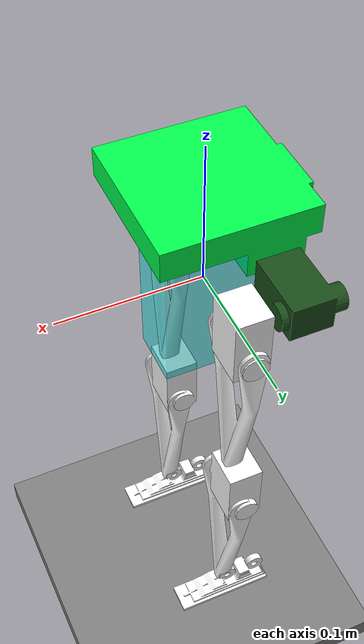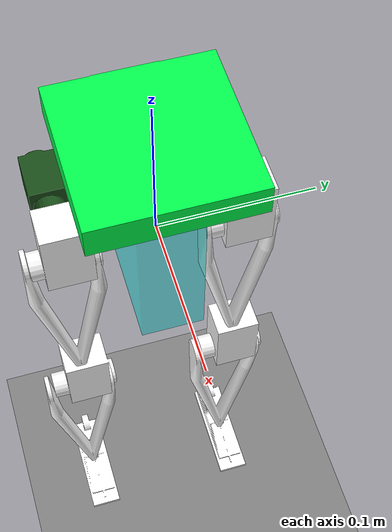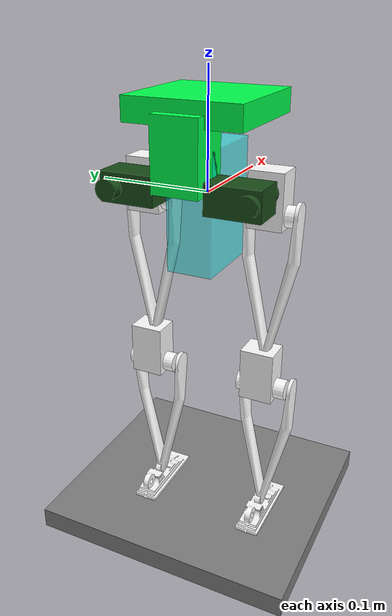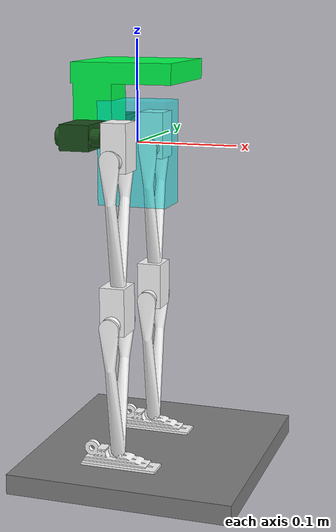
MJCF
<mujoco model="stepMARKIV">

  <asset>
    <mesh name="JETSON" file="../scad/JETSON.stl" scale="0.001 0.001 0.001"/>
    <mesh name="BATT" file="../scad/BATT.stl" scale="0.001 0.001 0.001"/>
    <mesh name="PELVIS" file="../scad/PELVIS.stl" scale="0.001 0.001 0.001"/>
    <mesh name="HIP" file="../scad/HIP.stl" scale="0.001 0.001 0.001"/>
    <mesh name="THIGH" file="../scad/THIGH.stl" scale="0.001 0.001 0.001"/>
    <mesh name="SHIN" file="../scad/SHIN.stl" scale="0.001 0.001 0.001"/>
    <mesh name="SHINLINK" file="../scad/SHINLINK.stl" scale="0.001 0.001 0.001"/>
    <mesh name="FOOT" file="../scad/FOOT.stl" scale="0.001 0.001 0.001"/>
  </asset>

   <default>
      <joint axis="1 0 0" limited="true" range="-10 10" damping="0.1"/>
      <geom size="1 1 .01" type="box"/>

   </default>

   <worldbody>
      <body>
    <geom pos="0 0 0" quat="1 0 0 0" type="mesh" rgba="0 1 1 0.5" mesh="BATT"/>
    <geom pos="0 0 .02" quat="1 0 0 0" type="mesh" rgba="0 1 0.3 1" mesh="JETSON"/>
    <geom pos="0 0 .01" quat="1 0 0 0" type="mesh" rgba=".1 .3 .1 1" mesh="PELVIS"/>
    <geom pos="-0.08 0 .01" quat="0 0 0 1" type="mesh" rgba=".1 .3 .1 1" mesh="PELVIS"/>

            <body>
               <joint pos="-0.05 .058 0.01" name="servo_4" axis="1 0 0" limited="true" damping="0.1"/>
               <geom pos="0 0 0" quat="1 0 0 0" type="mesh" rgba="1 1 1 1" mesh="HIP"/>
               <body pos=".00 0 0">
                  <joint pos="0 .05 -0.01" name="servo_3" axis="0 1 0" limited="true" damping="0.1"/>
                  <geom pos="0 -0 0" quat="1 0 0 0" type="mesh" rgba="1 1 1 1" mesh="THIGH"/>
                  <body pos=".00 0 0">
                     <joint  pos="-0.001 0.05 -0.168" name="servo_2" axis="0 1 0" limited="true" damping="0.1"/>
                     <geom pos="0 -0 0" quat="1 0 0 0" type="mesh" rgba="1 1 1 1" mesh="SHIN"/>
                     <body pos=".00 0 0">
                        <joint  pos="0 0.05 -0.298" name="servo_1" axis="0 1 0" limited="true" damping="0.1"/>
                        <geom pos="0 -0 0" quat="1 0 0 0" type="mesh" rgba="1 1 1 1" mesh="FOOT"/>
                     </body>
                  </body>
               </body>
            </body>

           <body>
               <joint pos="-0.05 -.058 0.01" name="servo_5" axis="1 0 0" limited="true" damping="0.1"/>
               <geom pos="0 -0.11 0" quat="1 0 0 0" type="mesh" rgba="1 1 1 1" mesh="HIP"/>
               <body pos=".00 0 0">
                  <joint pos="0 -.058 -0.01" name="servo_6" axis="0 1 0" limited="true" damping="0.1"/>
                  <geom pos="0 -0.11 0" quat="1 0 0 0" type="mesh" rgba="1 1 1 1" mesh="THIGH"/>
                  <body pos=".00 0 0">
                     <joint  pos="-0.001 -0.058 -0.168" name="servo_7" axis="0 1 0" limited="true" damping="0.1"/>
                     <geom pos="0 -0.11 0" quat="1 0 0 0" type="mesh" rgba="1 1 1 1" mesh="SHIN"/>
                     <body pos=".00 0 0">
                        <joint  pos="0 -0.058 -0.298" name="servo_8" axis="0 1 0" limited="true" damping="0.1"/>
                        <geom pos="0 -0.11 0" quat="1 0 0 0" type="mesh" rgba="1 1 1 1" mesh="FOOT"/>
                     </body>
                  </body>
               </body>
            </body>
      </body>

      <body mocap="true">
         <geom  pos="0 0.0 -0.325"/>
      </body>
   </worldbody>

  <actuator>
    <position ctrllimited="true" ctrlrange="-10 10" gear="1" joint="servo_1"/>
  </actuator>
  <actuator>
    <position ctrllimited="true" ctrlrange="-10 10" gear="1" joint="servo_2"/>
  </actuator>
  <actuator>
    <position ctrllimited="true" ctrlrange="-10 10" gear="1" joint="servo_3"/>
  </actuator>
  <actuator>
    <position ctrllimited="true" ctrlrange="-10 10" gear="1" joint="servo_4"/>
  </actuator>
  <actuator>
    <position ctrllimited="true" ctrlrange="-10 10" gear="1" joint="servo_5"/>
  </actuator>
  <actuator>
    <position ctrllimited="true" ctrlrange="-10 10" gear="1" joint="servo_6"/>
  </actuator>
  <actuator>
    <position ctrllimited="true" ctrlrange="-10 10" gear="1" joint="servo_7"/>
  </actuator>
  <actuator>
    <position ctrllimited="true" ctrlrange="-10 10" gear="1" joint="servo_8"/>
  </actuator>
</mujoco>
